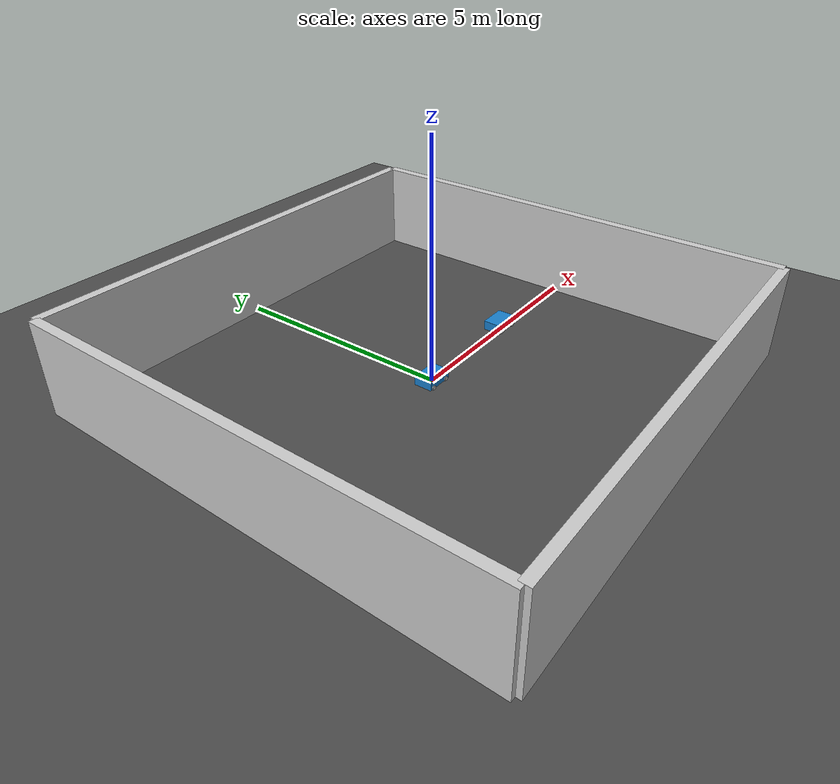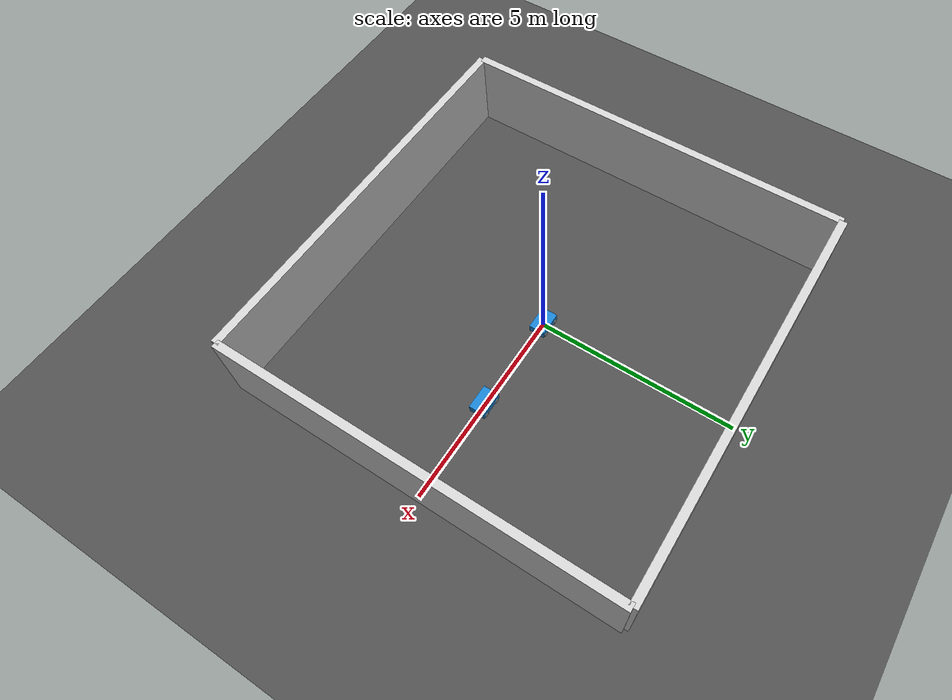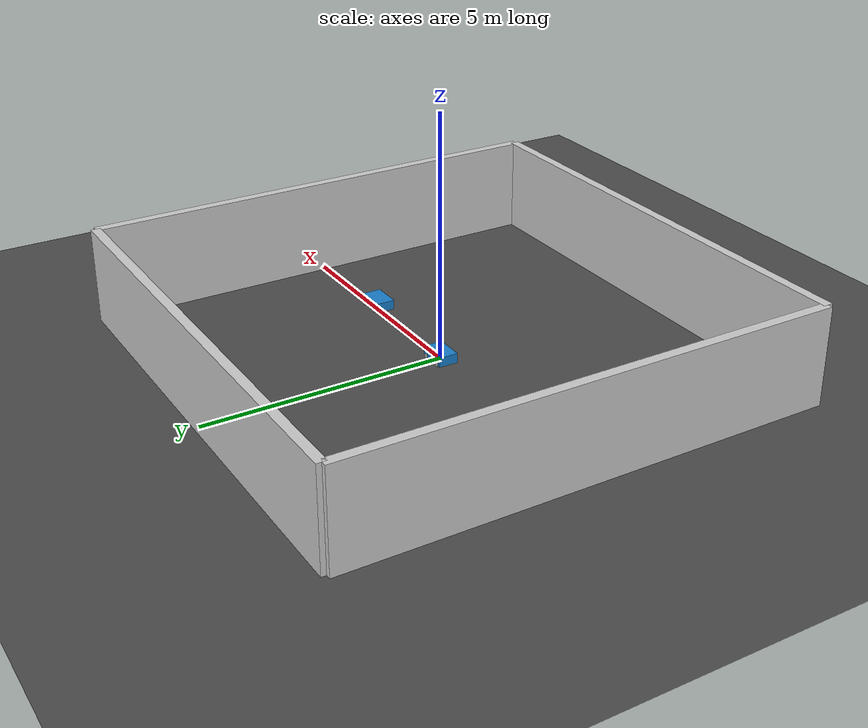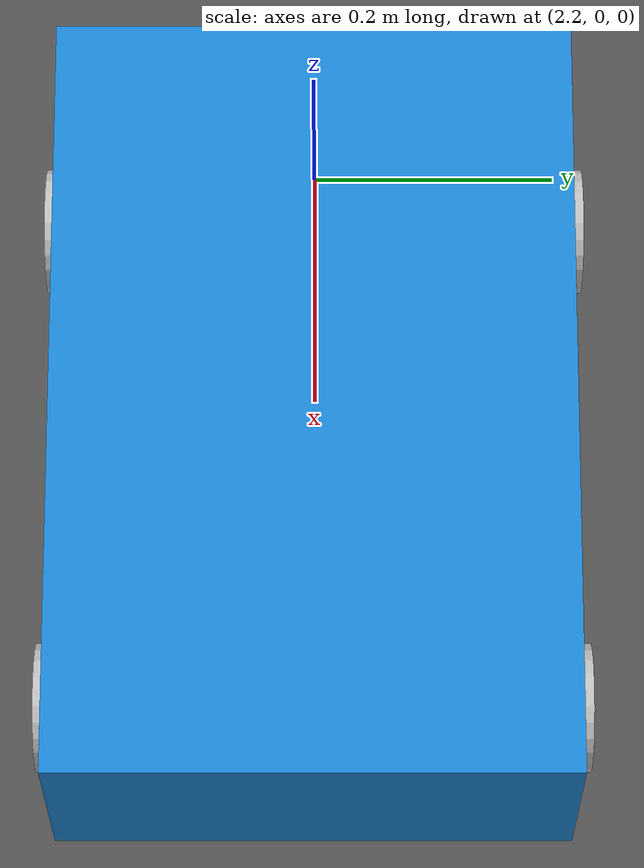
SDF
<?xml version="1.0"?>
<sdf version="1.7">
  <world name="agv_circling_room">
    <!-- Physics -->
    <physics type="ode">
      <gravity>0 0 -9.8</gravity>
      <max_step_size>0.001</max_step_size>
    </physics>

    <!-- Lighting -->
    <light name="sun" type="directional">
      <pose>0 0 10 0 0 0</pose>
      <diffuse>1 1 1 1</diffuse>
      <specular>1 1 1 1</specular>
      <attenuation>
        <linear>0.1</linear>
        <constant>0.1</constant>
        <quadratic>0.1</quadratic>
      </attenuation>
      <direction>-0.5 -0.5 -1</direction>
    </light>

    <!-- Floor (Ground Plane) -->
    <model name="ground_plane">
      <pose>0 0 0 0 0 0</pose>
      <static>true</static>
      <link name="link">
        <collision name="collision">
          <geometry>
            <plane>
              <normal>0 0 1</normal>
              <size>100 100</size>
            </plane>
          </geometry>
        </collision>
        <visual name="visual">
          <geometry>
            <plane>
              <normal>0 0 1</normal>
              <size>100 100</size>
            </plane>
          </geometry>
          <material>
            <ambient>0.2 0.2 0.2 1</ambient>
            <diffuse>0.3 0.3 0.3 1</diffuse>
            <specular>0.5 0.5 0.5 1</specular>
          </material>
        </visual>
      </link>
    </model>

    <!-- Circular Table -->
    <include>
      <uri>/config/models/circular_table/model.sdf</uri>
      <pose>0 0 0 0 0 0</pose>
    </include>

    <!-- AGV -->
    <include>
      <uri>/config/models/simple_agv/model.sdf</uri>
      <pose>2.5 0 0.1 0 0 0</pose>
    </include>

    <!-- Walls -->
    <!-- North Wall -->
    <model name="wall_north">
      <pose>0 5 1 0 0 0</pose>
      <static>true</static>
      <link name="link">
        <collision name="collision">
          <geometry>
            <box>
              <size>10 0.2 2</size>
            </box>
          </geometry>
        </collision>
        <visual name="visual">
          <geometry>
            <box>
              <size>10 0.2 2</size>
            </box>
          </geometry>
          <material>
            <ambient>0.8 0.8 0.8 1</ambient>
          </material>
        </visual>
      </link>
    </model>

    <!-- South Wall -->
    <model name="wall_south">
      <pose>0 -5 1 0 0 0</pose>
      <static>true</static>
      <link name="link">
        <collision name="collision">
          <geometry>
            <box>
              <size>10 0.2 2</size>
            </box>
          </geometry>
        </collision>
        <visual name="visual">
          <geometry>
            <box>
              <size>10 0.2 2</size>
            </box>
          </geometry>
          <material>
            <ambient>0.8 0.8 0.8 1</ambient>
          </material>
        </visual>
      </link>
    </model>

    <!-- East Wall -->
    <model name="wall_east">
      <pose>5 0 1 0 0 0</pose>
      <static>true</static>
      <link name="link">
        <collision name="collision">
          <geometry>
            <box>
              <size>0.2 10 2</size>
            </box>
          </geometry>
        </collision>
        <visual name="visual">
          <geometry>
            <box>
              <size>0.2 10 2</size>
            </box>
          </geometry>
          <material>
            <ambient>0.8 0.8 0.8 1</ambient>
          </material>
        </visual>
      </link>
    </model>

    <!-- West Wall -->
    <model name="wall_west">
      <pose>-5 0 1 0 0 0</pose>
      <static>true</static>
      <link name="link">
        <collision name="collision">
          <geometry>
            <box>
              <size>0.2 10 2</size>
            </box>
          </geometry>
        </collision>
        <visual name="visual">
          <geometry>
            <box>
              <size>0.2 10 2</size>
            </box>
          </geometry>
          <material>
            <ambient>0.8 0.8 0.8 1</ambient>
          </material>
        </visual>
      </link>
    </model>

  </world>
</sdf>

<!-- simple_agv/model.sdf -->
<sdf version="1.7">
  <model name="simple_agv">
    <pose>2.5 0 0.1 0 0 0</pose> <!-- Initial position on the ground -->

    <!-- Chassis -->
    <link name="chassis">
      <pose>0 0 0.1 0 0 0</pose>
      <inertial>
        <mass>10.0</mass>
        <inertia>
          <ixx>0.5</ixx>
          <iyy>0.5</iyy>
          <izz>0.5</izz>
        </inertia>
      </inertial>
      <collision name="collision">
        <geometry>
          <box>
            <size>0.6 0.4 0.2</size>
          </box>
        </geometry>
        <surface>
          <friction>
            <ode>
              <mu>1.5</mu>
              <mu2>1.5</mu2>
            </ode>
          </friction>
        </surface>
      </collision>
      <visual name="visual">
        <geometry>
          <box>
            <size>0.6 0.4 0.2</size>
          </box>
        </geometry>
        <material>
          <ambient>0.1 0.5 0.8 1</ambient>
        </material>
      </visual>
    </link>

    <!-- Wheels -->

    <!-- Front Left -->
    <link name="wheel_fl">
      <pose>0.2 0.2 0.025 0 0 0</pose>
      <collision name="collision">
        <geometry>
          <cylinder>
            <radius>0.05</radius>
            <length>0.03</length>
          </cylinder>
        </geometry>
        <pose>0 0 0 1.5708 0 0</pose> <!-- Rotate to spin around Y-axis -->
        <surface>
          <friction>
            <ode>
              <mu>2.0</mu>
              <mu2>2.0</mu2>
            </ode>
          </friction>
        </surface>
      </collision>
      <visual name="visual">
        <geometry>
          <cylinder>
            <radius>0.05</radius>
            <length>0.03</length>
          </cylinder>
        </geometry>
        <pose>0 0 0 1.5708 0 0</pose>
      </visual>
    </link>

    <!-- Front Right -->
    <link name="wheel_fr">
      <pose>0.2 -0.2 0.025 0 0 0</pose>
      <collision name="collision">
        <geometry>
          <cylinder>
            <radius>0.05</radius>
            <length>0.03</length>
          </cylinder>
        </geometry>
        <pose>0 0 0 1.5708 0 0</pose>
        <surface>
          <friction>
            <ode>
              <mu>2.0</mu>
              <mu2>2.0</mu2>
            </ode>
          </friction>
        </surface>
      </collision>
      <visual name="visual">
        <geometry>
          <cylinder>
            <radius>0.05</radius>
            <length>0.03</length>
          </cylinder>
        </geometry>
        <pose>0 0 0 1.5708 0 0</pose>
      </visual>
    </link>

    <!-- Rear Left -->
    <link name="wheel_rl">
      <pose>-0.2 0.2 0.025 0 0 0</pose>
      <collision name="collision">
        <geometry>
          <cylinder>
            <radius>0.05</radius>
            <length>0.03</length>
          </cylinder>
        </geometry>
        <pose>0 0 0 1.5708 0 0</pose>
      </collision>
      <visual name="visual">
        <geometry>
          <cylinder>
            <radius>0.05</radius>
            <length>0.03</length>
          </cylinder>
        </geometry>
        <pose>0 0 0 1.5708 0 0</pose>
      </visual>
    </link>

    <!-- Rear Right -->
    <link name="wheel_rr">
      <pose>-0.2 -0.2 0.025 0 0 0</pose>
      <collision name="collision">
        <geometry>
          <cylinder>
            <radius>0.05</radius>
            <length>0.03</length>
          </cylinder>
        </geometry>
        <pose>0 0 0 1.5708 0 0</pose>
      </collision>
      <visual name="visual">
        <geometry>
          <cylinder>
            <radius>0.05</radius>
            <length>0.03</length>
          </cylinder>
        </geometry>
        <pose>0 0 0 1.5708 0 0</pose>
      </visual>
    </link>

    <!-- Wheel Joints -->
    <joint name="wheel_fl_joint" type="revolute">
      <parent>chassis</parent>
      <child>wheel_fl</child>
      <axis>
        <xyz>0 1 0</xyz>
        <limit>
          <lower>-1000</lower>
          <upper>1000</upper>
          <effort>1e6</effort>
          <velocity>100</velocity>
        </limit>
      </axis>
    </joint>

    <joint name="wheel_fr_joint" type="revolute">
      <parent>chassis</parent>
      <child>wheel_fr</child>
      <axis>
        <xyz>0 1 0</xyz>
        <limit>
          <lower>-1000</lower>
          <upper>1000</upper>
          <effort>1e6</effort>
          <velocity>100</velocity>
        </limit>
      </axis>
    </joint>

    <joint name="wheel_rl_joint" type="revolute">
      <parent>chassis</parent>
      <child>wheel_rl</child>
      <axis>
        <xyz>0 1 0</xyz>
        <limit>
          <lower>-1000</lower>
          <upper>1000</upper>
        </limit>
      </axis>
    </joint>

    <joint name="wheel_rr_joint" type="revolute">
      <parent>chassis</parent>
      <child>wheel_rr</child>
      <axis>
        <xyz>0 1 0</xyz>
        <limit>
          <lower>-1000</lower>
          <upper>1000</upper>
        </limit>
      </axis>
    </joint>

    <!-- Diff Drive Plugin (2WD) -->
    <plugin
      name="ignition::gazebo::systems::DiffDrive"
      filename="libignition-gazebo-diff-drive-system.so">
      <left_joint>wheel_fl_joint</left_joint>
      <right_joint>wheel_fr_joint</right_joint>
      <wheel_separation>0.4</wheel_separation>
      <wheel_radius>0.05</wheel_radius>
      <odom_publish_tf>false</odom_publish_tf>
      <topic>/cmd_vel</topic>
      <odom_topic>/odom</odom_topic>
      <min_velocity>-1.0</min_velocity>
      <max_velocity>1.0</max_velocity>
      <min_acceleration>-1.0</min_acceleration>
      <max_acceleration>1.0</max_acceleration>
    </plugin>

  </model>
</sdf>
